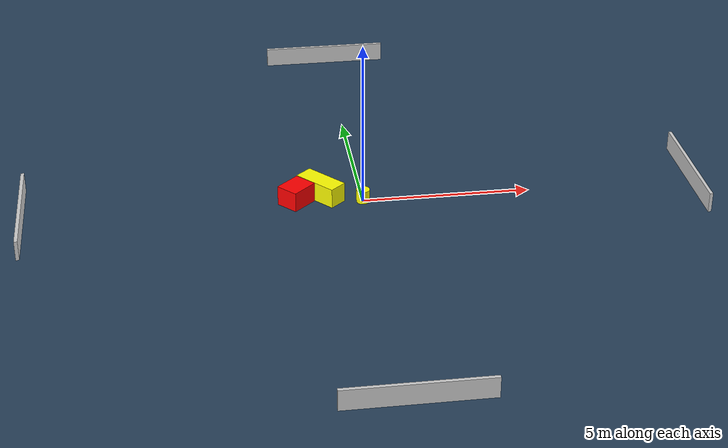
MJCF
<?xml version="1.0" ?>
<mujoco model="generated_environment">
  <option timestep="0.01" integrator="RK4" cone="elliptic"/>
  <default>
    <geom density="1"/>
  </default>
  <asset>
    <texture builtin="gradient" height="3072" name="skybox" rgb1="0.3 0.5 0.7" rgb2="0 0 0" type="skybox" width="512"/>
    <texture builtin="checker" height="300" name="groundplane" rgb1="0.2 0.3 0.4" rgb2="0.1 0.2 0.3" type="2d" width="300"/>
    <material name="groundplane" reflectance="0.2" texrepeat="5 5" texture="groundplane"/>
  </asset>
  <worldbody>
    <light dir="0 0 -1" directional="true" pos="0 0 1.5"/>
    <geom condim="3" friction="0.5 0.005 0.001" material="groundplane" name="floor" pos="0 0 0" size="0 0 0.05" type="plane"/>
    <body name="walls">
      <geom name="wall_1" condim="4" pos="-10.0 0.0 0.3" rgba="0.800000011920929 0.800000011920929 0.800000011920929 1.0" size="0.05 2.0 0.3" type="box"/>
      <geom name="wall_2" condim="4" pos="10.0 0.0 0.3" rgba="0.800000011920929 0.800000011920929 0.800000011920929 1.0" size="0.05 2.0 0.3" type="box"/>
      <geom name="wall_3" condim="4" pos="0.0 -10.0 0.3" rgba="0.800000011920929 0.800000011920929 0.800000011920929 1.0" size="2.0 0.05 0.3" type="box"/>
      <geom name="wall_4" condim="4" pos="0.0 10.0 0.3" rgba="0.800000011920929 0.800000011920929 0.800000011920929 1.0" size="2.0 0.05 0.3" type="box"/>
    </body>
    <body name="robot">
      <joint name="joint_x" type="slide" pos="0 0 0" axis="1 0 0"/>
      <joint name="joint_y" type="slide" pos="0 0 0" axis="0 1 0"/>
      <geom name="robot" type="cylinder" pos="0.0 0.0 0.2" size="0.2 0.2 0.0" mass="5.0" friction="1.0 0.005 0.0001" condim="4" rgba="1.0 1.0 0.0 1.0"/>
    </body>
    <body name="obstacle_1_movable">
      <geom name="obstacle_1_movable" condim="4" pos="-1.2128321182663064 0.43094019604600814 0.3" euler="0 0 311.5974982578905" friction="0.0 0.005 0.001" rgba="1.0 1.0 0.0 1.0" size="0.6995513828492279 0.2869731547064708 0.3" type="box" mass="0.1"/>
      <joint type="free"/>
    </body>
    <body name="obstacle_2_static">
      <geom name="obstacle_2_static" condim="4" pos="-1.9695269713884607 0.1801633950400738 0.3" euler="0 0 42.7437775190089" friction="0.0 0.005 0.001" rgba="1.0 0.0 0.0 1.0" size="0.4258443246046313 0.3506103788749899 0.3" type="box"/>
    </body>
  </worldbody>
  <actuator>
    <motor name="actuator_x" joint="joint_x" gear="1" ctrlrange="-1 1"/>
    <motor name="actuator_y" joint="joint_y" gear="1" ctrlrange="-1 1"/>
  </actuator>
</mujoco>
